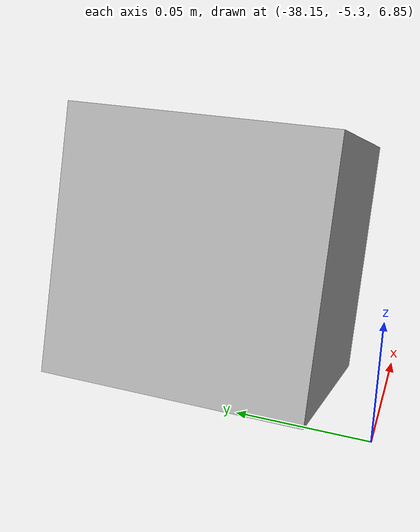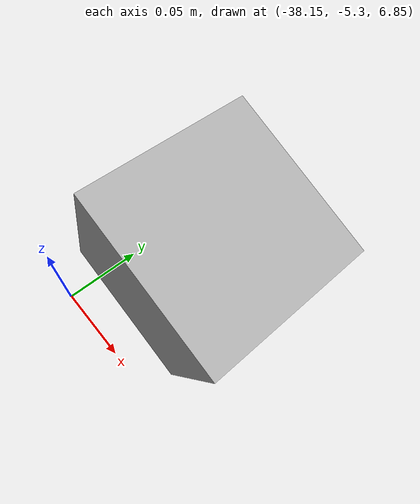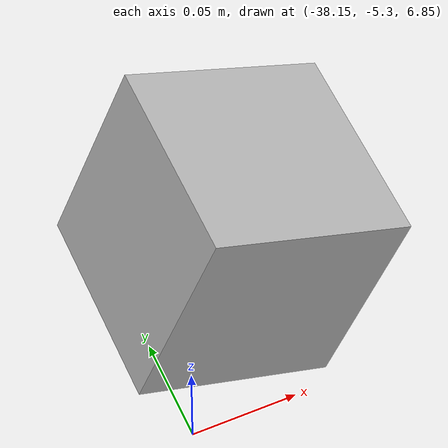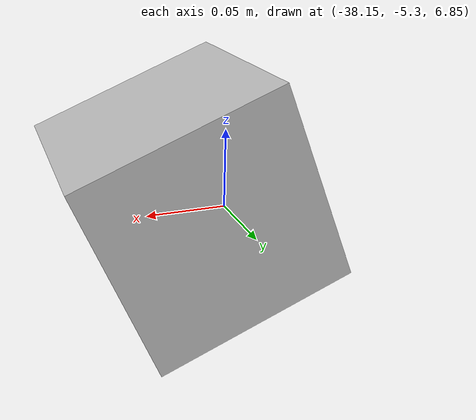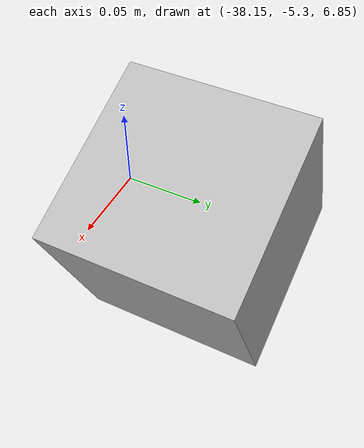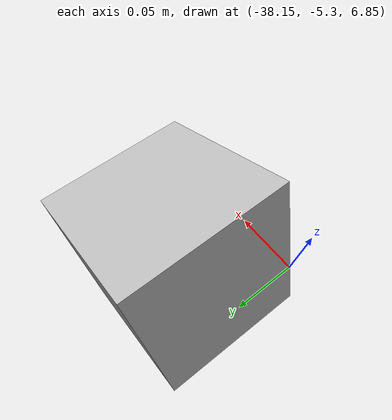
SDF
<sdf version="1.6">
 <world name="default">
  <model name="camera_recorder">
   <static>true</static>
   <pose>-38.1014 -5.22913 6.89088 0 0.385796 -0.003769</pose>
   <link name="cam_link">
    <visual name="visual"><geometry><box><size>0.1 0.1 0.1</size></box></geometry></visual>
    <sensor name="my_camera" type="camera">
     <camera>
      <save enabled="false"><path>/tmp/gazebo_camera</path></save>
      <horizontal_fov>1.047</horizontal_fov>
      <image><width>1920</width><height>1080</height></image>
      <clip><near>0.1</near><far>100</far></clip>
     </camera>
     <always_on>1</always_on>
     <update_rate>30</update_rate>
    </sensor>
   </link>
  </model>
 </world>
</sdf>
